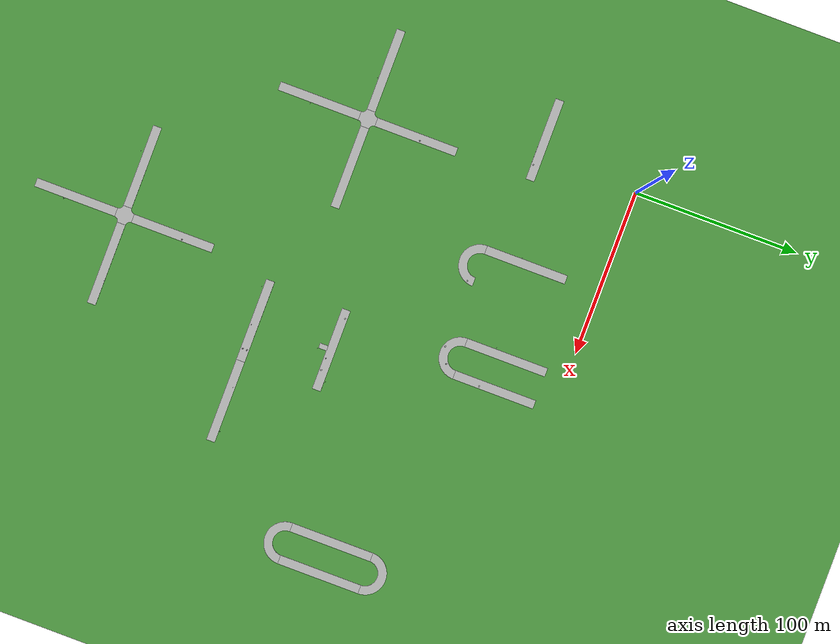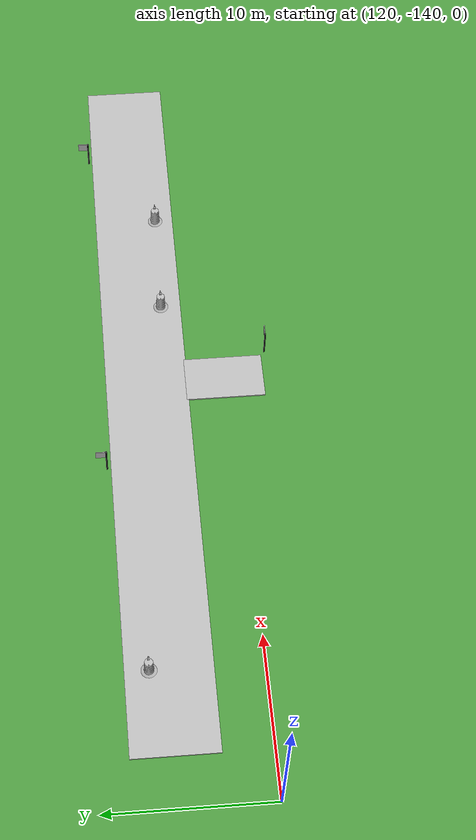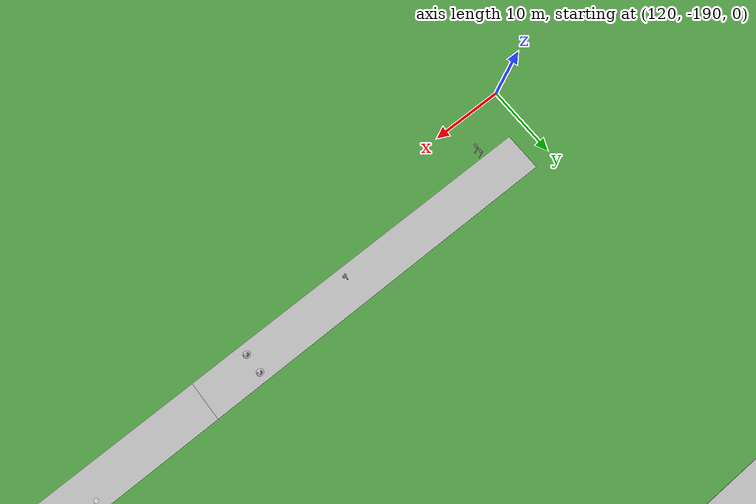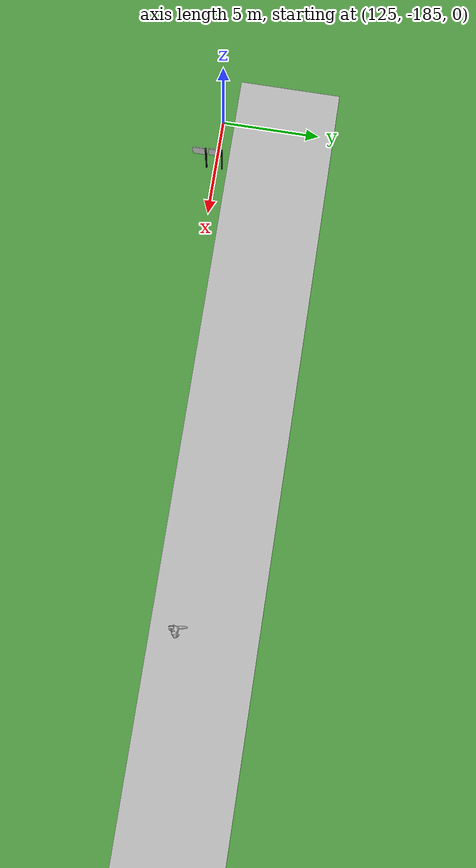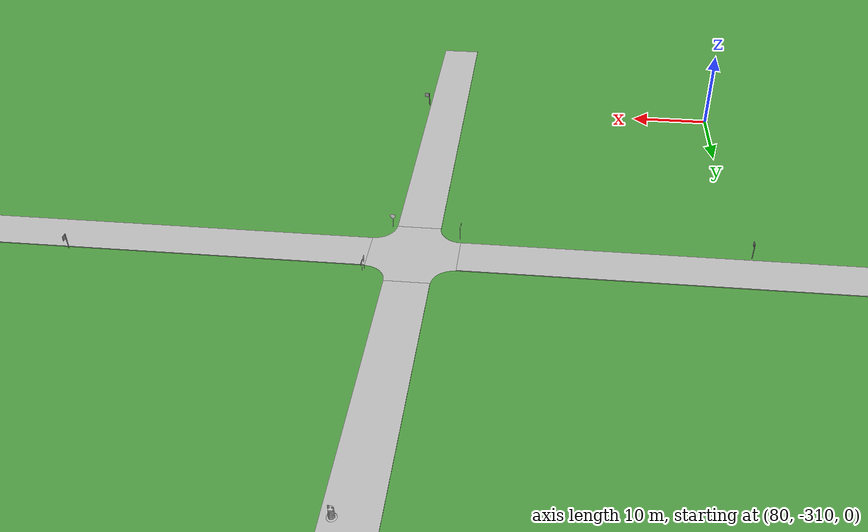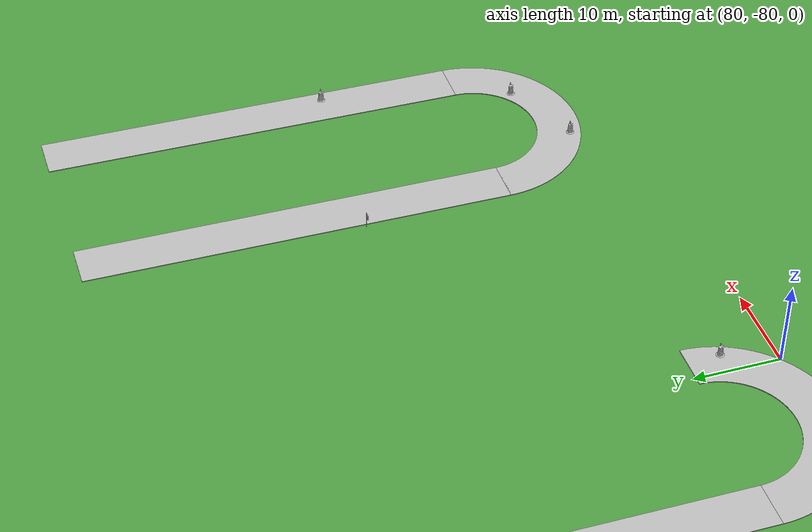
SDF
<sdf version="1.6">
 <world name="default">
  <light name="sun" type="directional">
   <pose>0 0 10 0 -0 0</pose>
   <diffuse>0.8 0.8 0.8 1</diffuse>
   <specular>0.2 0.2 0.2 1</specular>
   <attenuation>
    <range>1000</range>
    <constant>0.9</constant>
    <linear>0.01</linear>
    <quadratic>0.001</quadratic>
   </attenuation>
   <direction>-0.5 0.1 -0.9</direction>
  </light>
  <model name="ground_plane">
   <pose>0 0 0 0 -0 3.14159</pose>
   <static>1</static>
   <link name="link">
    <collision name="collision">
     <geometry><plane><normal>0 0 1</normal><size>100 100</size></plane></geometry>
     <surface><friction><ode><mu>100</mu><mu2>50</mu2></ode></friction></surface>
    </collision>
    <visual name="visual">
     <cast_shadows>0</cast_shadows>
     <geometry><plane><normal>0 0 1</normal><size>10000 10000</size></plane></geometry>
     <material>
      <script>
       <uri>model://grass_background/materials/scripts</uri>
       <uri>model://grass_background/materials/textures</uri>
       <name>GrassBackground</name>
      </script>
     </material>
    </visual>
   </link>
  </model>
  <gravity>0 0 -9.8</gravity>
  <magnetic_field>6e-06 2.3e-05 -4.2e-05</magnetic_field>
  <atmosphere type="adiabatic"/>
  <physics name="default_physics" default="0" type="ode">
   <max_step_size>0.001</max_step_size>
   <real_time_factor>1</real_time_factor>
   <real_time_update_rate>1000</real_time_update_rate>
  </physics>
  <scene><ambient>0.4 0.4 0.4 1</ambient><background>0.7 0.7 0.7 1</background><shadows>1</shadows></scene>
  <spherical_coordinates>
   <surface_model>EARTH_WGS84</surface_model>
   <latitude_deg>0</latitude_deg>
   <longitude_deg>0</longitude_deg>
   <elevation>0</elevation>
   <heading_deg>0</heading_deg>
  </spherical_coordinates>
  <model name="straight_road_50_0">
   <pose>-10.31 -60.5989 0 0 -0 0</pose>
   <static>1</static>
   <link name="link">
    <inertial>
     <mass>1</mass>
     <inertia><ixx>1</ixx><iyy>1</iyy><izz>1</izz><ixy>0</ixy><ixz>0</ixz><iyz>0</iyz></inertia>
    </inertial>
    <visual name="visual">
     <geometry><mesh><uri>model://straight_road_50/meshes/straight_road_50.dae</uri></mesh></geometry>
    </visual>
    <collision name="collision">
     <geometry><mesh><uri>model://straight_road_50/meshes/straight_road_50.dae</uri></mesh></geometry>
    </collision>
   </link>
  </model>
  <model name="Construction Barrel">
   <link name="link">
    <inertial>
     <pose>0 0 0.4 0 -0 0</pose>
     <mass>500</mass>
     <inertia><ixx>51.2096</ixx><iyy>51.2096</iyy><izz>25</izz><ixy>0</ixy><ixz>0</ixz><iyz>0</iyz></inertia>
    </inertial>
    <collision name="collision">
     <geometry><mesh><uri>model://construction_barrel/meshes/construction_barrel.dae</uri></mesh></geometry>
    </collision>
    <visual name="visual">
     <geometry><mesh><uri>model://construction_barrel/meshes/construction_barrel.dae</uri></mesh></geometry>
    </visual>
   </link>
   <pose>5.56912 -61.916 0.019707 1e-06 1e-06 0.014916</pose>
  </model>
  <model name="q2_flag">
   <pose>-24.0308 -63.7181 0 0 -0 0</pose>
   <static>1</static>
   <link name="link">
    <visual name="visual">
     <geometry><mesh><uri>model://start_flag_q2/meshes/start_flag.dae</uri></mesh></geometry>
    </visual>
   </link>
  </model>
  <model name="straight_road_50">
   <pose>-15.849 -161.66 0 0 -0 0</pose>
   <static>1</static>
   <link name="link">
    <inertial>
     <mass>1</mass>
     <inertia><ixx>1</ixx><iyy>1</iyy><izz>1</izz><ixy>0</ixy><ixz>0</ixz><iyz>0</iyz></inertia>
    </inertial>
    <visual name="visual">
     <geometry><mesh><uri>model://straight_road_50/meshes/straight_road_50.dae</uri></mesh></geometry>
    </visual>
    <collision name="collision">
     <geometry><mesh><uri>model://straight_road_50/meshes/straight_road_50.dae</uri></mesh></geometry>
    </collision>
   </link>
  </model>
  <model name="straight_road_50_1">
   <pose>14.3377 -131.483 0 0 0 -1.5707</pose>
   <static>1</static>
   <link name="link">
    <inertial>
     <mass>1</mass>
     <inertia><ixx>1</ixx><iyy>1</iyy><izz>1</izz><ixy>0</ixy><ixz>0</ixz><iyz>0</iyz></inertia>
    </inertial>
    <visual name="visual">
     <geometry><mesh><uri>model://straight_road_50/meshes/straight_road_50.dae</uri></mesh></geometry>
    </visual>
    <collision name="collision">
     <geometry><mesh><uri>model://straight_road_50/meshes/straight_road_50.dae</uri></mesh></geometry>
    </collision>
   </link>
  </model>
  <model name="straight_road_50_2">
   <pose>44.5278 -161.67 0 0 -0 0</pose>
   <static>1</static>
   <link name="link">
    <inertial>
     <mass>1</mass>
     <inertia><ixx>1</ixx><iyy>1</iyy><izz>1</izz><ixy>0</ixy><ixz>0</ixz><iyz>0</iyz></inertia>
    </inertial>
    <visual name="visual">
     <geometry><mesh><uri>model://straight_road_50/meshes/straight_road_50.dae</uri></mesh></geometry>
    </visual>
    <collision name="collision">
     <geometry><mesh><uri>model://straight_road_50/meshes/straight_road_50.dae</uri></mesh></geometry>
    </collision>
   </link>
  </model>
  <model name="straight_road_50_3">
   <pose>14.3042 -191.84 0 0 -0 1.5707</pose>
   <static>1</static>
   <link name="link">
    <inertial>
     <mass>1</mass>
     <inertia><ixx>1</ixx><iyy>1</iyy><izz>1</izz><ixy>0</ixy><ixz>0</ixz><iyz>0</iyz></inertia>
    </inertial>
    <visual name="visual">
     <geometry><mesh><uri>model://straight_road_50/meshes/straight_road_50.dae</uri></mesh></geometry>
    </visual>
    <collision name="collision">
     <geometry><mesh><uri>model://straight_road_50/meshes/straight_road_50.dae</uri></mesh></geometry>
    </collision>
   </link>
  </model>
  <model name="Construction Barrel_0">
   <link name="link">
    <inertial>
     <pose>0 0 0.4 0 -0 0</pose>
     <mass>500</mass>
     <inertia><ixx>51.2096</ixx><iyy>51.2096</iyy><izz>25</izz><ixy>0</ixy><ixz>0</ixz><iyz>0</iyz></inertia>
    </inertial>
    <collision name="collision">
     <geometry><mesh><uri>model://construction_barrel/meshes/construction_barrel.dae</uri></mesh></geometry>
    </collision>
    <visual name="visual">
     <geometry><mesh><uri>model://construction_barrel/meshes/construction_barrel.dae</uri></mesh></geometry>
    </visual>
   </link>
   <pose>15.6719 -128.879 0.019706 -2e-06 -1e-06 0.01533</pose>
  </model>
  <model name="q3_flag">
   <pose>-9.86683 -164.687 0 0 -0 0</pose>
   <static>1</static>
   <link name="link">
    <visual name="visual">
     <geometry><mesh><uri>model://start_flag_q3/meshes/start_flag.dae</uri></mesh></geometry>
    </visual>
   </link>
  </model>
  <model name="q4_flag">
   <pose>40.0653 -158.437 0 0 -0 3.14159</pose>
   <static>1</static>
   <link name="link">
    <visual name="visual">
     <geometry><mesh><uri>model://start_flag_q4/meshes/start_flag.dae</uri></mesh></geometry>
    </visual>
   </link>
  </model>
  <model name="Stop Sign">
   <static>1</static>
   <link name="link">
    <collision name="collision">
     <geometry><mesh><uri>model://stop_sign/meshes/stop_sign.dae</uri></mesh></geometry>
    </collision>
    <visual name="visual">
     <geometry><mesh><uri>model://stop_sign/meshes/stop_sign.dae</uri></mesh></geometry>
     <material>
      <script>
       <uri>model://stop_sign/materials/scripts</uri>
       <uri>model://stop_sign/materials/textures</uri>
       <name>StopSign/Diffuse</name>
      </script>
     </material>
    </visual>
   </link>
   <pose>17.4808 -166.716 0 0 -0 0</pose>
  </model>
  <model name="q5_flag">
   <pose>17.4518 -196.097 0 0 -0 1.5707</pose>
   <static>1</static>
   <link name="link">
    <visual name="visual">
     <geometry><mesh><uri>model://start_flag_q5/meshes/start_flag.dae</uri></mesh></geometry>
    </visual>
   </link>
  </model>
  <model name="straight_road_50_4">
   <pose>86.6555 -275.065 0 0 -0 0</pose>
   <static>1</static>
   <link name="link">
    <inertial>
     <mass>1</mass>
     <inertia><ixx>1</ixx><iyy>1</iyy><izz>1</izz><ixy>0</ixy><ixz>0</ixz><iyz>0</iyz></inertia>
    </inertial>
    <visual name="visual">
     <geometry><mesh><uri>model://straight_road_50/meshes/straight_road_50.dae</uri></mesh></geometry>
    </visual>
    <collision name="collision">
     <geometry><mesh><uri>model://straight_road_50/meshes/straight_road_50.dae</uri></mesh></geometry>
    </collision>
   </link>
  </model>
  <model name="straight_road_50_5">
   <pose>116.842 -244.87 0 0 0 -1.5707</pose>
   <static>1</static>
   <link name="link">
    <inertial>
     <mass>1</mass>
     <inertia><ixx>1</ixx><iyy>1</iyy><izz>1</izz><ixy>0</ixy><ixz>0</ixz><iyz>0</iyz></inertia>
    </inertial>
    <visual name="visual">
     <geometry><mesh><uri>model://straight_road_50/meshes/straight_road_50.dae</uri></mesh></geometry>
    </visual>
    <collision name="collision">
     <geometry><mesh><uri>model://straight_road_50/meshes/straight_road_50.dae</uri></mesh></geometry>
    </collision>
   </link>
  </model>
  <model name="straight_road_50_6">
   <pose>116.825 -305.238 0 0 -0 1.5707</pose>
   <static>1</static>
   <link name="link">
    <inertial>
     <mass>1</mass>
     <inertia><ixx>1</ixx><iyy>1</iyy><izz>1</izz><ixy>0</ixy><ixz>0</ixz><iyz>0</iyz></inertia>
    </inertial>
    <visual name="visual">
     <geometry><mesh><uri>model://straight_road_50/meshes/straight_road_50.dae</uri></mesh></geometry>
    </visual>
    <collision name="collision">
     <geometry><mesh><uri>model://straight_road_50/meshes/straight_road_50.dae</uri></mesh></geometry>
    </collision>
   </link>
  </model>
  <model name="straight_road_50_7">
   <pose>147.022 -275.063 0 0 -0 3.14159</pose>
   <static>1</static>
   <link name="link">
    <inertial>
     <mass>1</mass>
     <inertia><ixx>1</ixx><iyy>1</iyy><izz>1</izz><ixy>0</ixy><ixz>0</ixz><iyz>0</iyz></inertia>
    </inertial>
    <visual name="visual">
     <geometry><mesh><uri>model://straight_road_50/meshes/straight_road_50.dae</uri></mesh></geometry>
    </visual>
    <collision name="collision">
     <geometry><mesh><uri>model://straight_road_50/meshes/straight_road_50.dae</uri></mesh></geometry>
    </collision>
   </link>
  </model>
  <model name="Construction Barrel_1">
   <link name="link">
    <inertial>
     <pose>0 0 0.4 0 -0 0</pose>
     <mass>500</mass>
     <inertia><ixx>51.2096</ixx><iyy>51.2096</iyy><izz>25</izz><ixy>0</ixy><ixz>0</ixz><iyz>0</iyz></inertia>
    </inertial>
    <collision name="collision">
     <geometry><mesh><uri>model://construction_barrel/meshes/construction_barrel.dae</uri></mesh></geometry>
    </collision>
    <visual name="visual">
     <geometry><mesh><uri>model://construction_barrel/meshes/construction_barrel.dae</uri></mesh></geometry>
    </visual>
   </link>
   <pose>118.372 -238.625 0.019705 6e-06 -2e-06 0.012276</pose>
  </model>
  <model name="Stop Sign_0">
   <static>1</static>
   <link name="link">
    <collision name="collision">
     <geometry><mesh><uri>model://stop_sign/meshes/stop_sign.dae</uri></mesh></geometry>
    </collision>
    <visual name="visual">
     <geometry><mesh><uri>model://stop_sign/meshes/stop_sign.dae</uri></mesh></geometry>
     <material>
      <script>
       <uri>model://stop_sign/materials/scripts</uri>
       <uri>model://stop_sign/materials/textures</uri>
       <name>StopSign/Diffuse</name>
      </script>
     </material>
    </visual>
   </link>
   <pose>121.915 -271.773 0 0 -0 1.5707</pose>
  </model>
  <model name="Stop Sign_1">
   <static>1</static>
   <link name="link">
    <collision name="collision">
     <geometry><mesh><uri>model://stop_sign/meshes/stop_sign.dae</uri></mesh></geometry>
    </collision>
    <visual name="visual">
     <geometry><mesh><uri>model://stop_sign/meshes/stop_sign.dae</uri></mesh></geometry>
     <material>
      <script>
       <uri>model://stop_sign/materials/scripts</uri>
       <uri>model://stop_sign/materials/textures</uri>
       <name>StopSign/Diffuse</name>
      </script>
     </material>
    </visual>
   </link>
   <pose>119.996 -280.159 0 0 -0 0</pose>
  </model>
  <model name="Stop Sign_2">
   <static>1</static>
   <link name="link">
    <collision name="collision">
     <geometry><mesh><uri>model://stop_sign/meshes/stop_sign.dae</uri></mesh></geometry>
    </collision>
    <visual name="visual">
     <geometry><mesh><uri>model://stop_sign/meshes/stop_sign.dae</uri></mesh></geometry>
     <material>
      <script>
       <uri>model://stop_sign/materials/scripts</uri>
       <uri>model://stop_sign/materials/textures</uri>
       <name>StopSign/Diffuse</name>
      </script>
     </material>
    </visual>
   </link>
   <pose>111.799 -278.434 0 0 0 -1.5707</pose>
  </model>
  <model name="one_way_right">
   <pose>121.984 -270.917 0 0 -0 1.5707</pose>
   <static>1</static>
   <link name="link">
    <inertial>
     <mass>1</mass>
     <inertia><ixx>1</ixx><iyy>1</iyy><izz>1</izz><ixy>0</ixy><ixz>0</ixz><iyz>0</iyz></inertia>
    </inertial>
    <visual name="visual">
     <geometry><mesh><uri>model://one_way_right/meshes/one_way_right.dae</uri></mesh></geometry>
    </visual>
    <collision name="collision">
     <geometry><mesh><uri>model://one_way_right/meshes/one_way_right.dae</uri></mesh></geometry>
    </collision>
   </link>
  </model>
  <model name="one_way_left">
   <pose>111.767 -279.232 0 0 0 -1.5707</pose>
   <static>1</static>
   <link name="link">
    <inertial>
     <mass>1</mass>
     <inertia><ixx>1</ixx><iyy>1</iyy><izz>1</izz><ixy>0</ixy><ixz>0</ixz><iyz>0</iyz></inertia>
    </inertial>
    <visual name="visual">
     <geometry><mesh><uri>model://one_way_left/meshes/one_way_left.dae</uri></mesh></geometry>
    </visual>
    <collision name="collision">
     <geometry><mesh><uri>model://one_way_left/meshes/one_way_left.dae</uri></mesh></geometry>
    </collision>
   </link>
  </model>
  <model name="f1_flag">
   <pose>119.626 -311.155 0 0 -0 1.5707</pose>
   <static>1</static>
   <link name="link">
    <visual name="visual">
     <geometry><mesh><uri>model://start_flag_f1/meshes/start_flag.dae</uri></mesh></geometry>
    </visual>
   </link>
  </model>
  <model name="f2_flag">
   <pose>78.3072 -278.113 0 0 -0 0</pose>
   <static>1</static>
   <link name="link">
    <visual name="visual">
     <geometry><mesh><uri>model://start_flag_f2/meshes/start_flag.dae</uri></mesh></geometry>
    </visual>
   </link>
  </model>
  <model name="f3_flag">
   <pose>156.66 -272.173 0 0 -0 3.14159</pose>
   <static>1</static>
   <link name="link">
    <visual name="visual">
     <geometry><mesh><uri>model://start_flag_f3/meshes/start_flag.dae</uri></mesh></geometry>
    </visual>
   </link>
  </model>
  <model name="road_intersection">
   <pose>116.839 -275.052 0 0 -0 0</pose>
   <static>1</static>
   <link name="link">
    <visual name="visual">
     <geometry><mesh><uri>model://road_intersection/meshes/road_intersection.dae</uri></mesh></geometry>
    </visual>
    <collision name="collision">
     <geometry><mesh><uri>model://road_intersection/meshes/road_intersection.dae</uri></mesh></geometry>
    </collision>
   </link>
  </model>
  <model name="road_intersection_0">
   <pose>14.3341 -161.671 0 0 -0 0</pose>
   <static>1</static>
   <link name="link">
    <visual name="visual">
     <geometry><mesh><uri>model://road_intersection/meshes/road_intersection.dae</uri></mesh></geometry>
    </visual>
    <collision name="collision">
     <geometry><mesh><uri>model://road_intersection/meshes/road_intersection.dae</uri></mesh></geometry>
    </collision>
   </link>
  </model>
  <model name="curved_road_10">
   <pose>126.466 -62.1707 0 0 -0 0</pose>
   <static>1</static>
   <link name="link">
    <inertial>
     <mass>1</mass>
     <inertia><ixx>1</ixx><iyy>1</iyy><izz>1</izz><ixy>0</ixy><ixz>0</ixz><iyz>0</iyz></inertia>
    </inertial>
    <visual name="visual">
     <geometry><mesh><uri>model://curved_road_10/meshes/curved_road_10.dae</uri></mesh></geometry>
    </visual>
    <collision name="collision">
     <geometry><mesh><uri>model://curved_road_10/meshes/curved_road_10.dae</uri></mesh></geometry>
    </collision>
   </link>
  </model>
  <model name="straight_road_50_8">
   <pose>116.469 -37.2661 0 0 0 -1.5707</pose>
   <static>1</static>
   <link name="link">
    <inertial>
     <mass>1</mass>
     <inertia><ixx>1</ixx><iyy>1</iyy><izz>1</izz><ixy>0</ixy><ixz>0</ixz><iyz>0</iyz></inertia>
    </inertial>
    <visual name="visual">
     <geometry><mesh><uri>model://straight_road_50/meshes/straight_road_50.dae</uri></mesh></geometry>
    </visual>
    <collision name="collision">
     <geometry><mesh><uri>model://straight_road_50/meshes/straight_road_50.dae</uri></mesh></geometry>
    </collision>
   </link>
  </model>
  <model name="straight_road_50_9">
   <pose>136.465 -37.2189 0 0 -0 1.5707</pose>
   <static>1</static>
   <link name="link">
    <inertial>
     <mass>1</mass>
     <inertia><ixx>1</ixx><iyy>1</iyy><izz>1</izz><ixy>0</ixy><ixz>0</ixz><iyz>0</iyz></inertia>
    </inertial>
    <visual name="visual">
     <geometry><mesh><uri>model://straight_road_50/meshes/straight_road_50.dae</uri></mesh></geometry>
    </visual>
    <collision name="collision">
     <geometry><mesh><uri>model://straight_road_50/meshes/straight_road_50.dae</uri></mesh></geometry>
    </collision>
   </link>
  </model>
  <model name="Construction Barrel_2">
   <link name="link">
    <inertial>
     <pose>0 0 0.4 0 -0 0</pose>
     <mass>500</mass>
     <inertia><ixx>51.2096</ixx><iyy>51.2096</iyy><izz>25</izz><ixy>0</ixy><ixz>0</ixz><iyz>0</iyz></inertia>
    </inertial>
    <collision name="collision">
     <geometry><mesh><uri>model://construction_barrel/meshes/construction_barrel.dae</uri></mesh></geometry>
    </collision>
    <visual name="visual">
     <geometry><mesh><uri>model://construction_barrel/meshes/construction_barrel.dae</uri></mesh></geometry>
    </visual>
   </link>
   <pose>122.828 -72.9008 0.019706 3e-06 0 0.001715</pose>
  </model>
  <model name="f11_flag">
   <pose>113.502 -44.714 0 0 0 -1.5707</pose>
   <static>1</static>
   <link name="link">
    <visual name="visual">
     <geometry><mesh><uri>model://start_flag_f11/meshes/start_flag.dae</uri></mesh></geometry>
    </visual>
   </link>
  </model>
  <model name="Construction Barrel_3">
   <link name="link">
    <inertial>
     <pose>0 0 0.4 0 -0 0</pose>
     <mass>500</mass>
     <inertia><ixx>51.2096</ixx><iyy>51.2096</iyy><izz>25</izz><ixy>0</ixy><ixz>0</ixz><iyz>0</iyz></inertia>
    </inertial>
    <collision name="collision">
     <geometry><mesh><uri>model://construction_barrel/meshes/construction_barrel.dae</uri></mesh></geometry>
    </collision>
    <visual name="visual">
     <geometry><mesh><uri>model://construction_barrel/meshes/construction_barrel.dae</uri></mesh></geometry>
    </visual>
   </link>
   <pose>132.13 -68.7432 0.019706 -2e-06 -1e-06 0.003752</pose>
  </model>
  <model name="Construction Barrel_4">
   <link name="link">
    <inertial>
     <pose>0 0 0.4 0 -0 0</pose>
     <mass>500</mass>
     <inertia><ixx>51.2096</ixx><iyy>51.2096</iyy><izz>25</izz><ixy>0</ixy><ixz>0</ixz><iyz>0</iyz></inertia>
    </inertial>
    <collision name="collision">
     <geometry><mesh><uri>model://construction_barrel/meshes/construction_barrel.dae</uri></mesh></geometry>
    </collision>
    <visual name="visual">
     <geometry><mesh><uri>model://construction_barrel/meshes/construction_barrel.dae</uri></mesh></geometry>
    </visual>
   </link>
   <pose>137.735 -46.2764 0.019702 -4e-06 9e-06 0.007501</pose>
  </model>
  <model name="Construction Barrel_5">
   <link name="link">
    <inertial>
     <pose>0 0 0.4 0 -0 0</pose>
     <mass>500</mass>
     <inertia><ixx>51.2096</ixx><iyy>51.2096</iyy><izz>25</izz><ixy>0</ixy><ixz>0</ixz><iyz>0</iyz></inertia>
    </inertial>
    <collision name="collision">
     <geometry><mesh><uri>model://construction_barrel/meshes/construction_barrel.dae</uri></mesh></geometry>
    </collision>
    <visual name="visual">
     <geometry><mesh><uri>model://construction_barrel/meshes/construction_barrel.dae</uri></mesh></geometry>
    </visual>
   </link>
   <pose>82.5038 -74.2322 0.019706 0 -0 0.000885</pose>
  </model>
  <model name="straight_road_50_10">
   <pose>61.7605 -45.4138 0 0 0 -1.5707</pose>
   <static>1</static>
   <link name="link">
    <inertial>
     <mass>1</mass>
     <inertia><ixx>1</ixx><iyy>1</iyy><izz>1</izz><ixy>0</ixy><ixz>0</ixz><iyz>0</iyz></inertia>
    </inertial>
    <visual name="visual">
     <geometry><mesh><uri>model://straight_road_50/meshes/straight_road_50.dae</uri></mesh></geometry>
    </visual>
    <collision name="collision">
     <geometry><mesh><uri>model://straight_road_50/meshes/straight_road_50.dae</uri></mesh></geometry>
    </collision>
   </link>
  </model>
  <model name="curved_road_10_0">
   <pose>71.7601 -70.3982 0 0 -0 0</pose>
   <static>1</static>
   <link name="link">
    <inertial>
     <mass>1</mass>
     <inertia><ixx>1</ixx><iyy>1</iyy><izz>1</izz><ixy>0</ixy><ixz>0</ixz><iyz>0</iyz></inertia>
    </inertial>
    <visual name="visual">
     <geometry><mesh><uri>model://curved_road_10/meshes/curved_road_10.dae</uri></mesh></geometry>
    </visual>
    <collision name="collision">
     <geometry><mesh><uri>model://curved_road_10/meshes/curved_road_10.dae</uri></mesh></geometry>
    </collision>
   </link>
  </model>
  <model name="f10_flag">
   <pose>58.9213 -48.9363 0 0 0 -1.5707</pose>
   <static>1</static>
   <link name="link">
    <visual name="visual">
     <geometry><mesh><uri>model://start_flag_f10/meshes/start_flag.dae</uri></mesh></geometry>
    </visual>
   </link>
  </model>
  <model name="straight_road_50_11">
   <pose>148.037 -134.421 0 0 -0 0</pose>
   <static>1</static>
   <link name="link">
    <inertial>
     <mass>1</mass>
     <inertia><ixx>1</ixx><iyy>1</iyy><izz>1</izz><ixy>0</ixy><ixz>0</ixz><iyz>0</iyz></inertia>
    </inertial>
    <visual name="visual">
     <geometry><mesh><uri>model://straight_road_50/meshes/straight_road_50.dae</uri></mesh></geometry>
    </visual>
    <collision name="collision">
     <geometry><mesh><uri>model://straight_road_50/meshes/straight_road_50.dae</uri></mesh></geometry>
    </collision>
   </link>
  </model>
  <model name="parking_space">
   <pose>148.041 -139.393 0 0 -0 0</pose>
   <static>1</static>
   <link name="link">
    <inertial>
     <mass>1</mass>
     <inertia><ixx>1</ixx><iyy>1</iyy><izz>1</izz><ixy>0</ixy><ixz>0</ixz><iyz>0</iyz></inertia>
    </inertial>
    <visual name="visual">
     <geometry><mesh><uri>model://parking_space/meshes/parking_space.dae</uri></mesh></geometry>
    </visual>
    <collision name="collision">
     <geometry><mesh><uri>model://parking_space/meshes/parking_space.dae</uri></mesh></geometry>
    </collision>
   </link>
  </model>
  <model name="Construction Barrel_6">
   <link name="link">
    <inertial>
     <pose>0 0 0.4 0 -0 0</pose>
     <mass>500</mass>
     <inertia><ixx>51.2096</ixx><iyy>51.2096</iyy><izz>25</izz><ixy>0</ixy><ixz>0</ixz><iyz>0</iyz></inertia>
    </inertial>
    <collision name="collision">
     <geometry><mesh><uri>model://construction_barrel/meshes/construction_barrel.dae</uri></mesh></geometry>
    </collision>
    <visual name="visual">
     <geometry><mesh><uri>model://construction_barrel/meshes/construction_barrel.dae</uri></mesh></geometry>
    </visual>
   </link>
   <pose>128.256 -133.265 0.019706 -3e-06 -2e-06 0.004903</pose>
  </model>
  <model name="f5_flag">
   <pose>141.838 -131.584 0 0 -0 3.14159</pose>
   <static>1</static>
   <link name="link">
    <visual name="visual">
     <geometry><mesh><uri>model://start_flag_f5/meshes/start_flag.dae</uri></mesh></geometry>
    </visual>
   </link>
  </model>
  <model name="f4_flag">
   <pose>149.856 -142.141 0 0 -0 1.5707</pose>
   <static>1</static>
   <link name="link">
    <visual name="visual">
     <geometry><mesh><uri>model://start_flag_f4/meshes/start_flag.dae</uri></mesh></geometry>
    </visual>
   </link>
  </model>
  <model name="Construction Barrel_7">
   <link name="link">
    <inertial>
     <pose>0 0 0.4 0 -0 0</pose>
     <mass>500</mass>
     <inertia><ixx>51.2096</ixx><iyy>51.2096</iyy><izz>25</izz><ixy>0</ixy><ixz>0</ixz><iyz>0</iyz></inertia>
    </inertial>
    <collision name="collision">
     <geometry><mesh><uri>model://construction_barrel/meshes/construction_barrel.dae</uri></mesh></geometry>
    </collision>
    <visual name="visual">
     <geometry><mesh><uri>model://construction_barrel/meshes/construction_barrel.dae</uri></mesh></geometry>
    </visual>
   </link>
   <pose>153.884 -135.739 0.019705 6e-06 3e-06 0.004543</pose>
  </model>
  <model name="Construction Barrel_8">
   <link name="link">
    <inertial>
     <pose>0 0 0.4 0 -0 0</pose>
     <mass>500</mass>
     <inertia><ixx>51.2096</ixx><iyy>51.2096</iyy><izz>25</izz><ixy>0</ixy><ixz>0</ixz><iyz>0</iyz></inertia>
    </inertial>
    <collision name="collision">
     <geometry><mesh><uri>model://construction_barrel/meshes/construction_barrel.dae</uri></mesh></geometry>
    </collision>
    <visual name="visual">
     <geometry><mesh><uri>model://construction_barrel/meshes/construction_barrel.dae</uri></mesh></geometry>
    </visual>
   </link>
   <pose>161.096 -135.854 0.019703 5e-06 5e-06 0.000734</pose>
  </model>
  <model name="f6_flag">
   <pose>166.651 -131.612 0 0 -0 3.14159</pose>
   <static>1</static>
   <link name="link">
    <visual name="visual">
     <geometry><mesh><uri>model://start_flag_f6/meshes/start_flag.dae</uri></mesh></geometry>
    </visual>
   </link>
  </model>
  <model name="straight_road_50_12">
   <pose>147.599 -181.824 0 0 -0 0</pose>
   <static>1</static>
   <link name="link">
    <inertial>
     <mass>1</mass>
     <inertia><ixx>1</ixx><iyy>1</iyy><izz>1</izz><ixy>0</ixy><ixz>0</ixz><iyz>0</iyz></inertia>
    </inertial>
    <visual name="visual">
     <geometry><mesh><uri>model://straight_road_50/meshes/straight_road_50.dae</uri></mesh></geometry>
    </visual>
    <collision name="collision">
     <geometry><mesh><uri>model://straight_road_50/meshes/straight_road_50.dae</uri></mesh></geometry>
    </collision>
   </link>
  </model>
  <model name="person_walking">
   <link name="link">
    <inertial>
     <pose>0 0 0.95 0 -0 0</pose>
     <mass>80</mass>
     <inertia><ixx>27.82</ixx><ixy>0</ixy><ixz>0</ixz><iyy>24.88</iyy><iyz>0</iyz><izz>4.57</izz></inertia>
    </inertial>
    <collision name="bottom">
     <pose>0 0 0.01 0 -0 0</pose>
     <geometry><box><size>0.35 0.75 0.02</size></box></geometry>
    </collision>
    <collision name="person">
     <pose>0 0 -0.02 0 -0 0</pose>
     <geometry><mesh><uri>model://person_walking/meshes/walking.dae</uri></mesh></geometry>
    </collision>
    <visual name="visual">
     <pose>0 0 -0.02 0 -0 0</pose>
     <geometry><mesh><uri>model://person_walking/meshes/walking.dae</uri></mesh></geometry>
    </visual>
   </link>
   <pose>150.534 -183.121 0.049999 -2e-06 -0 -0.000688</pose>
  </model>
  <model name="Construction Barrel_9">
   <link name="link">
    <inertial>
     <pose>0 0 0.4 0 -0 0</pose>
     <mass>500</mass>
     <inertia><ixx>51.2096</ixx><iyy>51.2096</iyy><izz>25</izz><ixy>0</ixy><ixz>0</ixz><iyz>0</iyz></inertia>
    </inertial>
    <collision name="collision">
     <geometry><mesh><uri>model://construction_barrel/meshes/construction_barrel.dae</uri></mesh></geometry>
    </collision>
    <visual name="visual">
     <geometry><mesh><uri>model://construction_barrel/meshes/construction_barrel.dae</uri></mesh></geometry>
    </visual>
   </link>
   <pose>165.509 -180.498 0.019706 0 -0 0.003464</pose>
  </model>
  <model name="f7_flag">
   <pose>127.511 -184.684 0 0 -0 0</pose>
   <static>1</static>
   <link name="link">
    <visual name="visual">
     <geometry><mesh><uri>model://start_flag_f7/meshes/start_flag.dae</uri></mesh></geometry>
    </visual>
   </link>
  </model>
  <model name="f8_flag">
   <pose>127.54 -185.487 0 0 -0 0</pose>
   <static>1</static>
   <link name="link">
    <visual name="visual">
     <geometry><mesh><uri>model://start_flag_f8/meshes/start_flag.dae</uri></mesh></geometry>
    </visual>
   </link>
  </model>
  <model name="straight_road_50_13">
   <pose>197.537 -181.821 0 0 -0 0</pose>
   <static>1</static>
   <link name="link">
    <inertial>
     <mass>1</mass>
     <inertia><ixx>1</ixx><iyy>1</iyy><izz>1</izz><ixy>0</ixy><ixz>0</ixz><iyz>0</iyz></inertia>
    </inertial>
    <visual name="visual">
     <geometry><mesh><uri>model://straight_road_50/meshes/straight_road_50.dae</uri></mesh></geometry>
    </visual>
    <collision name="collision">
     <geometry><mesh><uri>model://straight_road_50/meshes/straight_road_50.dae</uri></mesh></geometry>
    </collision>
   </link>
  </model>
  <model name="Construction Barrel_10">
   <link name="link">
    <inertial>
     <pose>0 0 0.4 0 -0 0</pose>
     <mass>500</mass>
     <inertia><ixx>51.2096</ixx><iyy>51.2096</iyy><izz>25</izz><ixy>0</ixy><ixz>0</ixz><iyz>0</iyz></inertia>
    </inertial>
    <collision name="collision">
     <geometry><mesh><uri>model://construction_barrel/meshes/construction_barrel.dae</uri></mesh></geometry>
    </collision>
    <visual name="visual">
     <geometry><mesh><uri>model://construction_barrel/meshes/construction_barrel.dae</uri></mesh></geometry>
    </visual>
   </link>
   <pose>165.502 -183.166 0.019701 7e-06 -7e-06 0.002724</pose>
  </model>
  <model name="f12_flag">
   <pose>215.242 -178.95 0 0 -0 3.14159</pose>
   <static>1</static>
   <link name="link">
    <visual name="visual">
     <geometry><mesh><uri>model://start_flag_f12/meshes/start_flag.dae</uri></mesh></geometry>
    </visual>
   </link>
  </model>
  <model name="pothole">
   <pose>188.788 -180.568 0 0 -0 0</pose>
   <static>1</static>
   <link name="link">
    <inertial>
     <mass>1</mass>
     <inertia><ixx>1</ixx><iyy>1</iyy><izz>1</izz><ixy>0</ixy><ixz>0</ixz><iyz>0</iyz></inertia>
    </inertial>
    <visual name="visual"><geometry><mesh><uri>model://pothole/meshes/pothole.dae</uri></mesh></geometry></visual>
    <collision name="collision">
     <geometry><mesh><uri>model://pothole/meshes/pothole.dae</uri></mesh></geometry>
    </collision>
   </link>
  </model>
  <audio><device>default</device></audio>
  <model name="curved_road_10_0_clone">
   <pose>263.21 -120.041 0 0 -0 0</pose>
   <static>1</static>
   <link name="link">
    <inertial>
     <mass>1</mass>
     <inertia><ixx>1</ixx><iyy>1</iyy><izz>1</izz><ixy>0</ixy><ixz>0</ixz><iyz>0</iyz></inertia>
    </inertial>
    <visual name="visual">
     <geometry><mesh><uri>model://curved_road_10/meshes/curved_road_10.dae</uri></mesh></geometry>
    </visual>
    <collision name="collision">
     <geometry><mesh><uri>model://curved_road_10/meshes/curved_road_10.dae</uri></mesh></geometry>
    </collision>
   </link>
  </model>
  <model name="straight_road_50_10_clone">
   <pose>253.177 -95.0529 0 0 0 -1.5707</pose>
   <static>1</static>
   <link name="link">
    <inertial>
     <mass>1</mass>
     <inertia><ixx>1</ixx><iyy>1</iyy><izz>1</izz><ixy>0</ixy><ixz>0</ixz><iyz>0</iyz></inertia>
    </inertial>
    <visual name="visual">
     <geometry><mesh><uri>model://straight_road_50/meshes/straight_road_50.dae</uri></mesh></geometry>
    </visual>
    <collision name="collision">
     <geometry><mesh><uri>model://straight_road_50/meshes/straight_road_50.dae</uri></mesh></geometry>
    </collision>
   </link>
  </model>
  <model name="straight_road_50_10_clone_0">
   <pose>273.21 -95.0785 0 0 0 -1.5707</pose>
   <static>1</static>
   <link name="link">
    <inertial>
     <mass>1</mass>
     <inertia><ixx>1</ixx><iyy>1</iyy><izz>1</izz><ixy>0</ixy><ixz>0</ixz><iyz>0</iyz></inertia>
    </inertial>
    <visual name="visual">
     <geometry><mesh><uri>model://straight_road_50/meshes/straight_road_50.dae</uri></mesh></geometry>
    </visual>
    <collision name="collision">
     <geometry><mesh><uri>model://straight_road_50/meshes/straight_road_50.dae</uri></mesh></geometry>
    </collision>
   </link>
  </model>
  <model name="curved_road_10_0_clone_0">
   <pose>263.183 -70.1423 0 0 0 -3.13684</pose>
   <static>1</static>
   <link name="link">
    <inertial>
     <mass>1</mass>
     <inertia><ixx>1</ixx><iyy>1</iyy><izz>1</izz><ixy>0</ixy><ixz>0</ixz><iyz>0</iyz></inertia>
    </inertial>
    <visual name="visual">
     <geometry><mesh><uri>model://curved_road_10/meshes/curved_road_10.dae</uri></mesh></geometry>
    </visual>
    <collision name="collision">
     <geometry><mesh><uri>model://curved_road_10/meshes/curved_road_10.dae</uri></mesh></geometry>
    </collision>
   </link>
  </model>
 </world>
</sdf>
